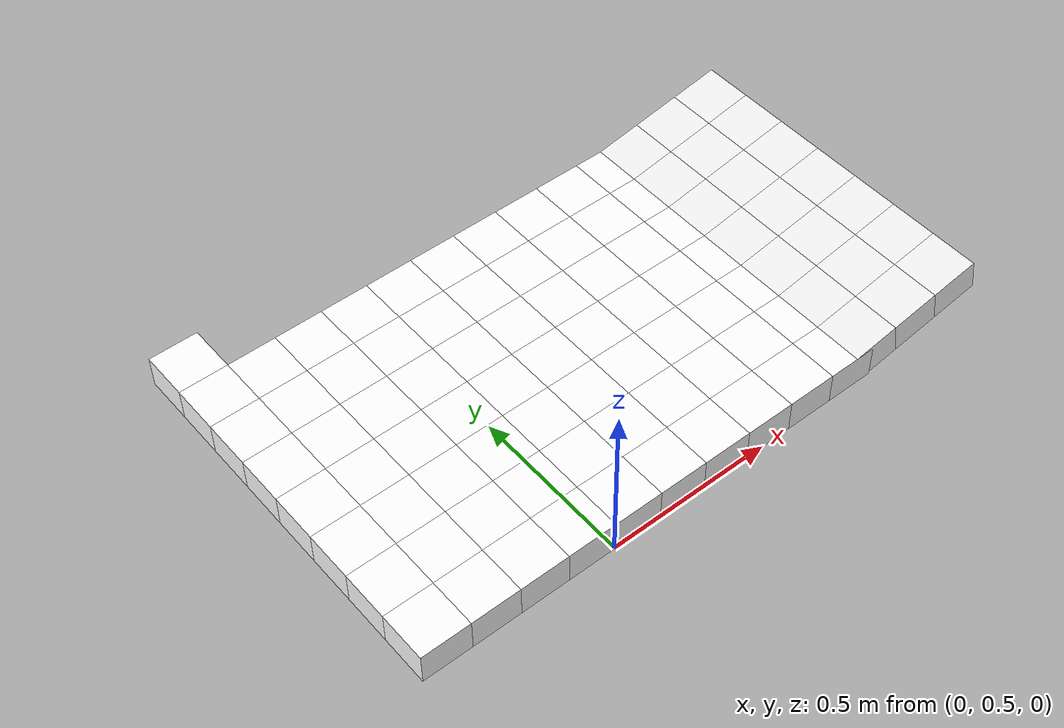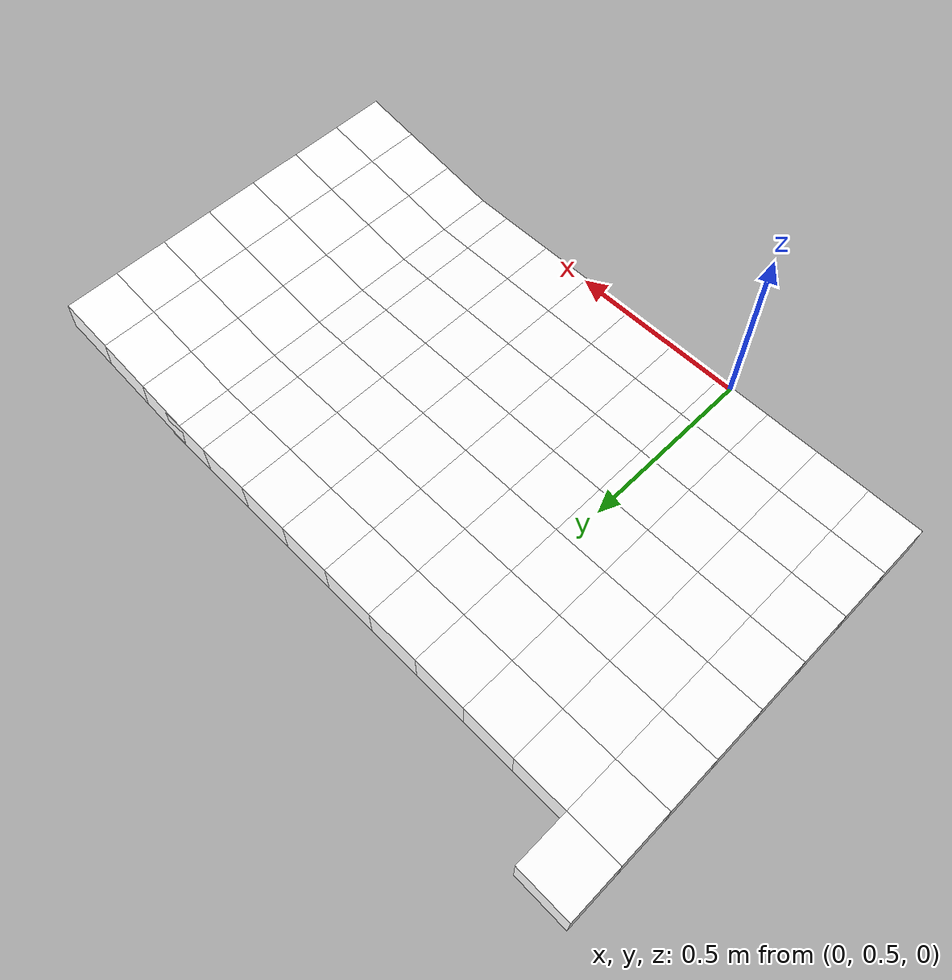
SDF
<sdf version="1.7">
 <world name="default">
  <include><uri>model://sun</uri></include>
  <model name="static_environment">
   <static>true</static>
   <link name="region_10">
    <pose>-0.5000000000000002 0.6 0.0 0.0 0.0 0.0</pose>
    <collision name="region_10_collision">
     <geometry><box><size>0.15 0.15 0.1</size></box></geometry>
     <surface><friction><ode><mu>1.0</mu><mu2>1.0</mu2></ode></friction></surface>
    </collision>
    <visual name="region_10_visual">
     <geometry><box><size>0.15 0.15 0.1</size></box></geometry>
     <material><ambient>1.0 1.0 1.0 1.0</ambient><diffuse>1.0 1.0 1.0 1.0</diffuse></material>
    </visual>
   </link>
   <link name="region_11">
    <pose>-0.3500000000000003 0.6 0.0 0.0 0.0 0.0</pose>
    <collision name="region_11_collision">
     <geometry><box><size>0.15 0.15 0.1</size></box></geometry>
     <surface><friction><ode><mu>1.0</mu><mu2>1.0</mu2></ode></friction></surface>
    </collision>
    <visual name="region_11_visual">
     <geometry><box><size>0.15 0.15 0.1</size></box></geometry>
     <material><ambient>1.0 1.0 1.0 1.0</ambient><diffuse>1.0 1.0 1.0 1.0</diffuse></material>
    </visual>
   </link>
   <link name="region_12">
    <pose>-0.2000000000000004 0.6 0.0 0.0 0.0 0.0</pose>
    <collision name="region_12_collision">
     <geometry><box><size>0.15 0.15 0.1</size></box></geometry>
     <surface><friction><ode><mu>1.0</mu><mu2>1.0</mu2></ode></friction></surface>
    </collision>
    <visual name="region_12_visual">
     <geometry><box><size>0.15 0.15 0.1</size></box></geometry>
     <material><ambient>1.0 1.0 1.0 1.0</ambient><diffuse>1.0 1.0 1.0 1.0</diffuse></material>
    </visual>
   </link>
   <link name="region_13">
    <pose>-0.05000000000000049 0.6 0.0 0.0 0.0 0.0</pose>
    <collision name="region_13_collision">
     <geometry><box><size>0.15 0.15 0.1</size></box></geometry>
     <surface><friction><ode><mu>1.0</mu><mu2>1.0</mu2></ode></friction></surface>
    </collision>
    <visual name="region_13_visual">
     <geometry><box><size>0.15 0.15 0.1</size></box></geometry>
     <material><ambient>1.0 1.0 1.0 1.0</ambient><diffuse>1.0 1.0 1.0 1.0</diffuse></material>
    </visual>
   </link>
   <link name="region_14">
    <pose>0.09999999999999964 0.6 0.0 0.0 0.0 0.0</pose>
    <collision name="region_14_collision">
     <geometry><box><size>0.15 0.15 0.1</size></box></geometry>
     <surface><friction><ode><mu>1.0</mu><mu2>1.0</mu2></ode></friction></surface>
    </collision>
    <visual name="region_14_visual">
     <geometry><box><size>0.15 0.15 0.1</size></box></geometry>
     <material><ambient>1.0 1.0 1.0 1.0</ambient><diffuse>1.0 1.0 1.0 1.0</diffuse></material>
    </visual>
   </link>
   <link name="region_15">
    <pose>0.24999999999999956 0.6 0.0 0.0 0.0 0.0</pose>
    <collision name="region_15_collision">
     <geometry><box><size>0.15 0.15 0.1</size></box></geometry>
     <surface><friction><ode><mu>1.0</mu><mu2>1.0</mu2></ode></friction></surface>
    </collision>
    <visual name="region_15_visual">
     <geometry><box><size>0.15 0.15 0.1</size></box></geometry>
     <material><ambient>1.0 1.0 1.0 1.0</ambient><diffuse>1.0 1.0 1.0 1.0</diffuse></material>
    </visual>
   </link>
   <link name="region_16">
    <pose>0.39999999999999947 0.6 0.0 0.0 0.0 0.0</pose>
    <collision name="region_16_collision">
     <geometry><box><size>0.15 0.15 0.1</size></box></geometry>
     <surface><friction><ode><mu>1.0</mu><mu2>1.0</mu2></ode></friction></surface>
    </collision>
    <visual name="region_16_visual">
     <geometry><box><size>0.15 0.15 0.1</size></box></geometry>
     <material><ambient>1.0 1.0 1.0 1.0</ambient><diffuse>1.0 1.0 1.0 1.0</diffuse></material>
    </visual>
   </link>
   <link name="region_17">
    <pose>0.5499999999999994 0.6 0.0 0.0 0.0 0.0</pose>
    <collision name="region_17_collision">
     <geometry><box><size>0.15 0.15 0.1</size></box></geometry>
     <surface><friction><ode><mu>1.0</mu><mu2>1.0</mu2></ode></friction></surface>
    </collision>
    <visual name="region_17_visual">
     <geometry><box><size>0.15 0.15 0.1</size></box></geometry>
     <material><ambient>1.0 1.0 1.0 1.0</ambient><diffuse>1.0 1.0 1.0 1.0</diffuse></material>
    </visual>
   </link>
   <link name="region_18">
    <pose>0.6999999999999993 0.6 0.0 0.0 0.0 0.0</pose>
    <collision name="region_18_collision">
     <geometry><box><size>0.15 0.15 0.1</size></box></geometry>
     <surface><friction><ode><mu>1.0</mu><mu2>1.0</mu2></ode></friction></surface>
    </collision>
    <visual name="region_18_visual">
     <geometry><box><size>0.15 0.15 0.1</size></box></geometry>
     <material><ambient>1.0 1.0 1.0 1.0</ambient><diffuse>1.0 1.0 1.0 1.0</diffuse></material>
    </visual>
   </link>
   <link name="region_19">
    <pose>0.8499999999999992 0.6 0.0 0.0 0.0 0.0</pose>
    <collision name="region_19_collision">
     <geometry><box><size>0.15 0.15 0.1</size></box></geometry>
     <surface><friction><ode><mu>1.0</mu><mu2>1.0</mu2></ode></friction></surface>
    </collision>
    <visual name="region_19_visual">
     <geometry><box><size>0.15 0.15 0.1</size></box></geometry>
     <material><ambient>1.0 1.0 1.0 1.0</ambient><diffuse>1.0 1.0 1.0 1.0</diffuse></material>
    </visual>
   </link>
   <link name="region_30">
    <pose>-0.5000000000000002 0.75 0.0 0.0 0.0 0.0</pose>
    <collision name="region_30_collision">
     <geometry><box><size>0.15 0.15 0.1</size></box></geometry>
     <surface><friction><ode><mu>1.0</mu><mu2>1.0</mu2></ode></friction></surface>
    </collision>
    <visual name="region_30_visual">
     <geometry><box><size>0.15 0.15 0.1</size></box></geometry>
     <material><ambient>1.0 1.0 1.0 1.0</ambient><diffuse>1.0 1.0 1.0 1.0</diffuse></material>
    </visual>
   </link>
   <link name="region_31">
    <pose>-0.3500000000000003 0.75 0.0 0.0 0.0 0.0</pose>
    <collision name="region_31_collision">
     <geometry><box><size>0.15 0.15 0.1</size></box></geometry>
     <surface><friction><ode><mu>1.0</mu><mu2>1.0</mu2></ode></friction></surface>
    </collision>
    <visual name="region_31_visual">
     <geometry><box><size>0.15 0.15 0.1</size></box></geometry>
     <material><ambient>1.0 1.0 1.0 1.0</ambient><diffuse>1.0 1.0 1.0 1.0</diffuse></material>
    </visual>
   </link>
   <link name="region_32">
    <pose>-0.2000000000000004 0.75 0.0 0.0 0.0 0.0</pose>
    <collision name="region_32_collision">
     <geometry><box><size>0.15 0.15 0.1</size></box></geometry>
     <surface><friction><ode><mu>1.0</mu><mu2>1.0</mu2></ode></friction></surface>
    </collision>
    <visual name="region_32_visual">
     <geometry><box><size>0.15 0.15 0.1</size></box></geometry>
     <material><ambient>1.0 1.0 1.0 1.0</ambient><diffuse>1.0 1.0 1.0 1.0</diffuse></material>
    </visual>
   </link>
   <link name="region_33">
    <pose>-0.05000000000000049 0.75 0.0 0.0 0.0 0.0</pose>
    <collision name="region_33_collision">
     <geometry><box><size>0.15 0.15 0.1</size></box></geometry>
     <surface><friction><ode><mu>1.0</mu><mu2>1.0</mu2></ode></friction></surface>
    </collision>
    <visual name="region_33_visual">
     <geometry><box><size>0.15 0.15 0.1</size></box></geometry>
     <material><ambient>1.0 1.0 1.0 1.0</ambient><diffuse>1.0 1.0 1.0 1.0</diffuse></material>
    </visual>
   </link>
   <link name="region_34">
    <pose>0.09999999999999964 0.75 0.0 0.0 0.0 0.0</pose>
    <collision name="region_34_collision">
     <geometry><box><size>0.15 0.15 0.1</size></box></geometry>
     <surface><friction><ode><mu>1.0</mu><mu2>1.0</mu2></ode></friction></surface>
    </collision>
    <visual name="region_34_visual">
     <geometry><box><size>0.15 0.15 0.1</size></box></geometry>
     <material><ambient>1.0 1.0 1.0 1.0</ambient><diffuse>1.0 1.0 1.0 1.0</diffuse></material>
    </visual>
   </link>
   <link name="region_35">
    <pose>0.24999999999999956 0.75 0.0 0.0 0.0 0.0</pose>
    <collision name="region_35_collision">
     <geometry><box><size>0.15 0.15 0.1</size></box></geometry>
     <surface><friction><ode><mu>1.0</mu><mu2>1.0</mu2></ode></friction></surface>
    </collision>
    <visual name="region_35_visual">
     <geometry><box><size>0.15 0.15 0.1</size></box></geometry>
     <material><ambient>1.0 1.0 1.0 1.0</ambient><diffuse>1.0 1.0 1.0 1.0</diffuse></material>
    </visual>
   </link>
   <link name="region_36">
    <pose>0.39999999999999947 0.75 0.0 0.0 0.0 0.0</pose>
    <collision name="region_36_collision">
     <geometry><box><size>0.15 0.15 0.1</size></box></geometry>
     <surface><friction><ode><mu>1.0</mu><mu2>1.0</mu2></ode></friction></surface>
    </collision>
    <visual name="region_36_visual">
     <geometry><box><size>0.15 0.15 0.1</size></box></geometry>
     <material><ambient>1.0 1.0 1.0 1.0</ambient><diffuse>1.0 1.0 1.0 1.0</diffuse></material>
    </visual>
   </link>
   <link name="region_37">
    <pose>0.5499999999999994 0.75 0.0 0.0 0.0 0.0</pose>
    <collision name="region_37_collision">
     <geometry><box><size>0.15 0.15 0.1</size></box></geometry>
     <surface><friction><ode><mu>1.0</mu><mu2>1.0</mu2></ode></friction></surface>
    </collision>
    <visual name="region_37_visual">
     <geometry><box><size>0.15 0.15 0.1</size></box></geometry>
     <material><ambient>1.0 1.0 1.0 1.0</ambient><diffuse>1.0 1.0 1.0 1.0</diffuse></material>
    </visual>
   </link>
   <link name="region_38">
    <pose>0.6999999999999993 0.75 0.0 0.0 0.0 0.0</pose>
    <collision name="region_38_collision">
     <geometry><box><size>0.15 0.15 0.1</size></box></geometry>
     <surface><friction><ode><mu>1.0</mu><mu2>1.0</mu2></ode></friction></surface>
    </collision>
    <visual name="region_38_visual">
     <geometry><box><size>0.15 0.15 0.1</size></box></geometry>
     <material><ambient>1.0 1.0 1.0 1.0</ambient><diffuse>1.0 1.0 1.0 1.0</diffuse></material>
    </visual>
   </link>
   <link name="region_39">
    <pose>0.8499999999999992 0.75 0.0 0.0 0.0 0.0</pose>
    <collision name="region_39_collision">
     <geometry><box><size>0.15 0.15 0.1</size></box></geometry>
     <surface><friction><ode><mu>1.0</mu><mu2>1.0</mu2></ode></friction></surface>
    </collision>
    <visual name="region_39_visual">
     <geometry><box><size>0.15 0.15 0.1</size></box></geometry>
     <material><ambient>1.0 1.0 1.0 1.0</ambient><diffuse>1.0 1.0 1.0 1.0</diffuse></material>
    </visual>
   </link>
   <link name="region_50">
    <pose>-0.5000000000000002 0.8999999999999999 0.0 0.0 0.0 0.0</pose>
    <collision name="region_50_collision">
     <geometry><box><size>0.15 0.15 0.1</size></box></geometry>
     <surface><friction><ode><mu>1.0</mu><mu2>1.0</mu2></ode></friction></surface>
    </collision>
    <visual name="region_50_visual">
     <geometry><box><size>0.15 0.15 0.1</size></box></geometry>
     <material><ambient>1.0 1.0 1.0 1.0</ambient><diffuse>1.0 1.0 1.0 1.0</diffuse></material>
    </visual>
   </link>
   <link name="region_51">
    <pose>-0.3500000000000003 0.8999999999999999 0.0 0.0 0.0 0.0</pose>
    <collision name="region_51_collision">
     <geometry><box><size>0.15 0.15 0.1</size></box></geometry>
     <surface><friction><ode><mu>1.0</mu><mu2>1.0</mu2></ode></friction></surface>
    </collision>
    <visual name="region_51_visual">
     <geometry><box><size>0.15 0.15 0.1</size></box></geometry>
     <material><ambient>1.0 1.0 1.0 1.0</ambient><diffuse>1.0 1.0 1.0 1.0</diffuse></material>
    </visual>
   </link>
   <link name="region_52">
    <pose>-0.2000000000000004 0.8999999999999999 0.0 0.0 0.0 0.0</pose>
    <collision name="region_52_collision">
     <geometry><box><size>0.15 0.15 0.1</size></box></geometry>
     <surface><friction><ode><mu>1.0</mu><mu2>1.0</mu2></ode></friction></surface>
    </collision>
    <visual name="region_52_visual">
     <geometry><box><size>0.15 0.15 0.1</size></box></geometry>
     <material><ambient>1.0 1.0 1.0 1.0</ambient><diffuse>1.0 1.0 1.0 1.0</diffuse></material>
    </visual>
   </link>
   <link name="region_53">
    <pose>-0.05000000000000049 0.8999999999999999 0.0 0.0 0.0 0.0</pose>
    <collision name="region_53_collision">
     <geometry><box><size>0.15 0.15 0.1</size></box></geometry>
     <surface><friction><ode><mu>1.0</mu><mu2>1.0</mu2></ode></friction></surface>
    </collision>
    <visual name="region_53_visual">
     <geometry><box><size>0.15 0.15 0.1</size></box></geometry>
     <material><ambient>1.0 1.0 1.0 1.0</ambient><diffuse>1.0 1.0 1.0 1.0</diffuse></material>
    </visual>
   </link>
   <link name="region_54">
    <pose>0.09999999999999964 0.8999999999999999 0.0 0.0 0.0 0.0</pose>
    <collision name="region_54_collision">
     <geometry><box><size>0.15 0.15 0.1</size></box></geometry>
     <surface><friction><ode><mu>1.0</mu><mu2>1.0</mu2></ode></friction></surface>
    </collision>
    <visual name="region_54_visual">
     <geometry><box><size>0.15 0.15 0.1</size></box></geometry>
     <material><ambient>1.0 1.0 1.0 1.0</ambient><diffuse>1.0 1.0 1.0 1.0</diffuse></material>
    </visual>
   </link>
   <link name="region_55">
    <pose>0.24999999999999956 0.8999999999999999 0.0 0.0 0.0 0.0</pose>
    <collision name="region_55_collision">
     <geometry><box><size>0.15 0.15 0.1</size></box></geometry>
     <surface><friction><ode><mu>1.0</mu><mu2>1.0</mu2></ode></friction></surface>
    </collision>
    <visual name="region_55_visual">
     <geometry><box><size>0.15 0.15 0.1</size></box></geometry>
     <material><ambient>1.0 1.0 1.0 1.0</ambient><diffuse>1.0 1.0 1.0 1.0</diffuse></material>
    </visual>
   </link>
   <link name="region_56">
    <pose>0.39999999999999947 0.8999999999999999 0.0 0.0 0.0 0.0</pose>
    <collision name="region_56_collision">
     <geometry><box><size>0.15 0.15 0.1</size></box></geometry>
     <surface><friction><ode><mu>1.0</mu><mu2>1.0</mu2></ode></friction></surface>
    </collision>
    <visual name="region_56_visual">
     <geometry><box><size>0.15 0.15 0.1</size></box></geometry>
     <material><ambient>1.0 1.0 1.0 1.0</ambient><diffuse>1.0 1.0 1.0 1.0</diffuse></material>
    </visual>
   </link>
   <link name="region_57">
    <pose>0.5499999999999994 0.8999999999999999 0.0 0.0 0.0 0.0</pose>
    <collision name="region_57_collision">
     <geometry><box><size>0.15 0.15 0.1</size></box></geometry>
     <surface><friction><ode><mu>1.0</mu><mu2>1.0</mu2></ode></friction></surface>
    </collision>
    <visual name="region_57_visual">
     <geometry><box><size>0.15 0.15 0.1</size></box></geometry>
     <material><ambient>1.0 1.0 1.0 1.0</ambient><diffuse>1.0 1.0 1.0 1.0</diffuse></material>
    </visual>
   </link>
   <link name="region_58">
    <pose>0.6999999999999993 0.8999999999999999 0.0 0.0 0.0 0.0</pose>
    <collision name="region_58_collision">
     <geometry><box><size>0.15 0.15 0.1</size></box></geometry>
     <surface><friction><ode><mu>1.0</mu><mu2>1.0</mu2></ode></friction></surface>
    </collision>
    <visual name="region_58_visual">
     <geometry><box><size>0.15 0.15 0.1</size></box></geometry>
     <material><ambient>1.0 1.0 1.0 1.0</ambient><diffuse>1.0 1.0 1.0 1.0</diffuse></material>
    </visual>
   </link>
   <link name="region_59">
    <pose>0.8499999999999992 0.8999999999999999 0.0 0.0 0.0 0.0</pose>
    <collision name="region_59_collision">
     <geometry><box><size>0.15 0.15 0.1</size></box></geometry>
     <surface><friction><ode><mu>1.0</mu><mu2>1.0</mu2></ode></friction></surface>
    </collision>
    <visual name="region_59_visual">
     <geometry><box><size>0.15 0.15 0.1</size></box></geometry>
     <material><ambient>1.0 1.0 1.0 1.0</ambient><diffuse>1.0 1.0 1.0 1.0</diffuse></material>
    </visual>
   </link>
   <link name="region_70">
    <pose>-0.5000000000000002 1.0499999999999998 0.0 0.0 0.0 0.0</pose>
    <collision name="region_70_collision">
     <geometry><box><size>0.15 0.15 0.1</size></box></geometry>
     <surface><friction><ode><mu>1.0</mu><mu2>1.0</mu2></ode></friction></surface>
    </collision>
    <visual name="region_70_visual">
     <geometry><box><size>0.15 0.15 0.1</size></box></geometry>
     <material><ambient>1.0 1.0 1.0 1.0</ambient><diffuse>1.0 1.0 1.0 1.0</diffuse></material>
    </visual>
   </link>
   <link name="region_71">
    <pose>-0.3500000000000003 1.0499999999999998 0.0 0.0 0.0 0.0</pose>
    <collision name="region_71_collision">
     <geometry><box><size>0.15 0.15 0.1</size></box></geometry>
     <surface><friction><ode><mu>1.0</mu><mu2>1.0</mu2></ode></friction></surface>
    </collision>
    <visual name="region_71_visual">
     <geometry><box><size>0.15 0.15 0.1</size></box></geometry>
     <material><ambient>1.0 1.0 1.0 1.0</ambient><diffuse>1.0 1.0 1.0 1.0</diffuse></material>
    </visual>
   </link>
   <link name="region_72">
    <pose>-0.2000000000000004 1.0499999999999998 0.0 0.0 0.0 0.0</pose>
    <collision name="region_72_collision">
     <geometry><box><size>0.15 0.15 0.1</size></box></geometry>
     <surface><friction><ode><mu>1.0</mu><mu2>1.0</mu2></ode></friction></surface>
    </collision>
    <visual name="region_72_visual">
     <geometry><box><size>0.15 0.15 0.1</size></box></geometry>
     <material><ambient>1.0 1.0 1.0 1.0</ambient><diffuse>1.0 1.0 1.0 1.0</diffuse></material>
    </visual>
   </link>
   <link name="region_73">
    <pose>-0.05000000000000049 1.0499999999999998 0.0 0.0 0.0 0.0</pose>
    <collision name="region_73_collision">
     <geometry><box><size>0.15 0.15 0.1</size></box></geometry>
     <surface><friction><ode><mu>1.0</mu><mu2>1.0</mu2></ode></friction></surface>
    </collision>
    <visual name="region_73_visual">
     <geometry><box><size>0.15 0.15 0.1</size></box></geometry>
     <material><ambient>1.0 1.0 1.0 1.0</ambient><diffuse>1.0 1.0 1.0 1.0</diffuse></material>
    </visual>
   </link>
   <link name="region_74">
    <pose>0.09999999999999964 1.0499999999999998 0.0 0.0 0.0 0.0</pose>
    <collision name="region_74_collision">
     <geometry><box><size>0.15 0.15 0.1</size></box></geometry>
     <surface><friction><ode><mu>1.0</mu><mu2>1.0</mu2></ode></friction></surface>
    </collision>
    <visual name="region_74_visual">
     <geometry><box><size>0.15 0.15 0.1</size></box></geometry>
     <material><ambient>1.0 1.0 1.0 1.0</ambient><diffuse>1.0 1.0 1.0 1.0</diffuse></material>
    </visual>
   </link>
   <link name="region_75">
    <pose>0.24999999999999956 1.0499999999999998 0.0 0.0 0.0 0.0</pose>
    <collision name="region_75_collision">
     <geometry><box><size>0.15 0.15 0.1</size></box></geometry>
     <surface><friction><ode><mu>1.0</mu><mu2>1.0</mu2></ode></friction></surface>
    </collision>
    <visual name="region_75_visual">
     <geometry><box><size>0.15 0.15 0.1</size></box></geometry>
     <material><ambient>1.0 1.0 1.0 1.0</ambient><diffuse>1.0 1.0 1.0 1.0</diffuse></material>
    </visual>
   </link>
   <link name="region_76">
    <pose>0.39999999999999947 1.0499999999999998 0.0 0.0 0.0 0.0</pose>
    <collision name="region_76_collision">
     <geometry><box><size>0.15 0.15 0.1</size></box></geometry>
     <surface><friction><ode><mu>1.0</mu><mu2>1.0</mu2></ode></friction></surface>
    </collision>
    <visual name="region_76_visual">
     <geometry><box><size>0.15 0.15 0.1</size></box></geometry>
     <material><ambient>1.0 1.0 1.0 1.0</ambient><diffuse>1.0 1.0 1.0 1.0</diffuse></material>
    </visual>
   </link>
   <link name="region_77">
    <pose>0.5499999999999994 1.0499999999999998 0.0 0.0 0.0 0.0</pose>
    <collision name="region_77_collision">
     <geometry><box><size>0.15 0.15 0.1</size></box></geometry>
     <surface><friction><ode><mu>1.0</mu><mu2>1.0</mu2></ode></friction></surface>
    </collision>
    <visual name="region_77_visual">
     <geometry><box><size>0.15 0.15 0.1</size></box></geometry>
     <material><ambient>1.0 1.0 1.0 1.0</ambient><diffuse>1.0 1.0 1.0 1.0</diffuse></material>
    </visual>
   </link>
   <link name="region_78">
    <pose>0.6999999999999993 1.0499999999999998 0.0 0.0 0.0 0.0</pose>
    <collision name="region_78_collision">
     <geometry><box><size>0.15 0.15 0.1</size></box></geometry>
     <surface><friction><ode><mu>1.0</mu><mu2>1.0</mu2></ode></friction></surface>
    </collision>
    <visual name="region_78_visual">
     <geometry><box><size>0.15 0.15 0.1</size></box></geometry>
     <material><ambient>1.0 1.0 1.0 1.0</ambient><diffuse>1.0 1.0 1.0 1.0</diffuse></material>
    </visual>
   </link>
   <link name="region_79">
    <pose>0.8499999999999992 1.0499999999999998 0.0 0.0 0.0 0.0</pose>
    <collision name="region_79_collision">
     <geometry><box><size>0.15 0.15 0.1</size></box></geometry>
     <surface><friction><ode><mu>1.0</mu><mu2>1.0</mu2></ode></friction></surface>
    </collision>
    <visual name="region_79_visual">
     <geometry><box><size>0.15 0.15 0.1</size></box></geometry>
     <material><ambient>1.0 1.0 1.0 1.0</ambient><diffuse>1.0 1.0 1.0 1.0</diffuse></material>
    </visual>
   </link>
   <link name="region_90">
    <pose>-0.5000000000000002 1.2 0.0 0.0 0.0 0.0</pose>
    <collision name="region_90_collision">
     <geometry><box><size>0.15 0.15 0.1</size></box></geometry>
     <surface><friction><ode><mu>1.0</mu><mu2>1.0</mu2></ode></friction></surface>
    </collision>
    <visual name="region_90_visual">
     <geometry><box><size>0.15 0.15 0.1</size></box></geometry>
     <material><ambient>1.0 1.0 1.0 1.0</ambient><diffuse>1.0 1.0 1.0 1.0</diffuse></material>
    </visual>
   </link>
   <link name="region_91">
    <pose>-0.3500000000000003 1.2 0.0 0.0 0.0 0.0</pose>
    <collision name="region_91_collision">
     <geometry><box><size>0.15 0.15 0.1</size></box></geometry>
     <surface><friction><ode><mu>1.0</mu><mu2>1.0</mu2></ode></friction></surface>
    </collision>
    <visual name="region_91_visual">
     <geometry><box><size>0.15 0.15 0.1</size></box></geometry>
     <material><ambient>1.0 1.0 1.0 1.0</ambient><diffuse>1.0 1.0 1.0 1.0</diffuse></material>
    </visual>
   </link>
   <link name="region_92">
    <pose>-0.2000000000000004 1.2 0.0 0.0 0.0 0.0</pose>
    <collision name="region_92_collision">
     <geometry><box><size>0.15 0.15 0.1</size></box></geometry>
     <surface><friction><ode><mu>1.0</mu><mu2>1.0</mu2></ode></friction></surface>
    </collision>
    <visual name="region_92_visual">
     <geometry><box><size>0.15 0.15 0.1</size></box></geometry>
     <material><ambient>1.0 1.0 1.0 1.0</ambient><diffuse>1.0 1.0 1.0 1.0</diffuse></material>
    </visual>
   </link>
   <link name="region_93">
    <pose>-0.05000000000000049 1.2 0.0 0.0 0.0 0.0</pose>
    <collision name="region_93_collision">
     <geometry><box><size>0.15 0.15 0.1</size></box></geometry>
     <surface><friction><ode><mu>1.0</mu><mu2>1.0</mu2></ode></friction></surface>
    </collision>
    <visual name="region_93_visual">
     <geometry><box><size>0.15 0.15 0.1</size></box></geometry>
     <material><ambient>1.0 1.0 1.0 1.0</ambient><diffuse>1.0 1.0 1.0 1.0</diffuse></material>
    </visual>
   </link>
   <link name="region_94">
    <pose>0.09999999999999964 1.2 0.0 0.0 0.0 0.0</pose>
    <collision name="region_94_collision">
     <geometry><box><size>0.15 0.15 0.1</size></box></geometry>
     <surface><friction><ode><mu>1.0</mu><mu2>1.0</mu2></ode></friction></surface>
    </collision>
    <visual name="region_94_visual">
     <geometry><box><size>0.15 0.15 0.1</size></box></geometry>
     <material><ambient>1.0 1.0 1.0 1.0</ambient><diffuse>1.0 1.0 1.0 1.0</diffuse></material>
    </visual>
   </link>
   <link name="region_95">
    <pose>0.24999999999999956 1.2 0.0 0.0 0.0 0.0</pose>
    <collision name="region_95_collision">
     <geometry><box><size>0.15 0.15 0.1</size></box></geometry>
     <surface><friction><ode><mu>1.0</mu><mu2>1.0</mu2></ode></friction></surface>
    </collision>
    <visual name="region_95_visual">
     <geometry><box><size>0.15 0.15 0.1</size></box></geometry>
     <material><ambient>1.0 1.0 1.0 1.0</ambient><diffuse>1.0 1.0 1.0 1.0</diffuse></material>
    </visual>
   </link>
   <link name="region_96">
    <pose>0.39999999999999947 1.2 0.0 0.0 0.0 0.0</pose>
    <collision name="region_96_collision">
     <geometry><box><size>0.15 0.15 0.1</size></box></geometry>
     <surface><friction><ode><mu>1.0</mu><mu2>1.0</mu2></ode></friction></surface>
    </collision>
    <visual name="region_96_visual">
     <geometry><box><size>0.15 0.15 0.1</size></box></geometry>
     <material><ambient>1.0 1.0 1.0 1.0</ambient><diffuse>1.0 1.0 1.0 1.0</diffuse></material>
    </visual>
   </link>
   <link name="region_97">
    <pose>0.5499999999999994 1.2 0.0 0.0 0.0 0.0</pose>
    <collision name="region_97_collision">
     <geometry><box><size>0.15 0.15 0.1</size></box></geometry>
     <surface><friction><ode><mu>1.0</mu><mu2>1.0</mu2></ode></friction></surface>
    </collision>
    <visual name="region_97_visual">
     <geometry><box><size>0.15 0.15 0.1</size></box></geometry>
     <material><ambient>1.0 1.0 1.0 1.0</ambient><diffuse>1.0 1.0 1.0 1.0</diffuse></material>
    </visual>
   </link>
   <link name="region_98">
    <pose>0.6999999999999993 1.2 0.0 0.0 0.0 0.0</pose>
    <collision name="region_98_collision">
     <geometry><box><size>0.15 0.15 0.1</size></box></geometry>
     <surface><friction><ode><mu>1.0</mu><mu2>1.0</mu2></ode></friction></surface>
    </collision>
    <visual name="region_98_visual">
     <geometry><box><size>0.15 0.15 0.1</size></box></geometry>
     <material><ambient>1.0 1.0 1.0 1.0</ambient><diffuse>1.0 1.0 1.0 1.0</diffuse></material>
    </visual>
   </link>
   <link name="region_99">
    <pose>0.8499999999999992 1.2 0.0 0.0 0.0 0.0</pose>
    <collision name="region_99_collision">
     <geometry><box><size>0.15 0.15 0.1</size></box></geometry>
     <surface><friction><ode><mu>1.0</mu><mu2>1.0</mu2></ode></friction></surface>
    </collision>
    <visual name="region_99_visual">
     <geometry><box><size>0.15 0.15 0.1</size></box></geometry>
     <material><ambient>1.0 1.0 1.0 1.0</ambient><diffuse>1.0 1.0 1.0 1.0</diffuse></material>
    </visual>
   </link>
   <link name="region_110">
    <pose>-0.5000000000000002 1.35 0.0 0.0 0.0 0.0</pose>
    <collision name="region_110_collision">
     <geometry><box><size>0.15 0.15 0.1</size></box></geometry>
     <surface><friction><ode><mu>1.0</mu><mu2>1.0</mu2></ode></friction></surface>
    </collision>
    <visual name="region_110_visual">
     <geometry><box><size>0.15 0.15 0.1</size></box></geometry>
     <material><ambient>1.0 1.0 1.0 1.0</ambient><diffuse>1.0 1.0 1.0 1.0</diffuse></material>
    </visual>
   </link>
   <link name="region_111">
    <pose>-0.3500000000000003 1.35 0.0 0.0 0.0 0.0</pose>
    <collision name="region_111_collision">
     <geometry><box><size>0.15 0.15 0.1</size></box></geometry>
     <surface><friction><ode><mu>1.0</mu><mu2>1.0</mu2></ode></friction></surface>
    </collision>
    <visual name="region_111_visual">
     <geometry><box><size>0.15 0.15 0.1</size></box></geometry>
     <material><ambient>1.0 1.0 1.0 1.0</ambient><diffuse>1.0 1.0 1.0 1.0</diffuse></material>
    </visual>
   </link>
   <link name="region_112">
    <pose>-0.2000000000000004 1.35 0.0 0.0 0.0 0.0</pose>
    <collision name="region_112_collision">
     <geometry><box><size>0.15 0.15 0.1</size></box></geometry>
     <surface><friction><ode><mu>1.0</mu><mu2>1.0</mu2></ode></friction></surface>
    </collision>
    <visual name="region_112_visual">
     <geometry><box><size>0.15 0.15 0.1</size></box></geometry>
     <material><ambient>1.0 1.0 1.0 1.0</ambient><diffuse>1.0 1.0 1.0 1.0</diffuse></material>
    </visual>
   </link>
   <link name="region_113">
    <pose>-0.05000000000000049 1.35 0.0 0.0 0.0 0.0</pose>
    <collision name="region_113_collision">
     <geometry><box><size>0.15 0.15 0.1</size></box></geometry>
     <surface><friction><ode><mu>1.0</mu><mu2>1.0</mu2></ode></friction></surface>
    </collision>
    <visual name="region_113_visual">
     <geometry><box><size>0.15 0.15 0.1</size></box></geometry>
     <material><ambient>1.0 1.0 1.0 1.0</ambient><diffuse>1.0 1.0 1.0 1.0</diffuse></material>
    </visual>
   </link>
   <link name="region_114">
    <pose>0.09999999999999964 1.35 0.0 0.0 0.0 0.0</pose>
    <collision name="region_114_collision">
     <geometry><box><size>0.15 0.15 0.1</size></box></geometry>
     <surface><friction><ode><mu>1.0</mu><mu2>1.0</mu2></ode></friction></surface>
    </collision>
    <visual name="region_114_visual">
     <geometry><box><size>0.15 0.15 0.1</size></box></geometry>
     <material><ambient>1.0 1.0 1.0 1.0</ambient><diffuse>1.0 1.0 1.0 1.0</diffuse></material>
    </visual>
   </link>
   <link name="region_115">
    <pose>0.24999999999999956 1.35 0.0 0.0 0.0 0.0</pose>
    <collision name="region_115_collision">
     <geometry><box><size>0.15 0.15 0.1</size></box></geometry>
     <surface><friction><ode><mu>1.0</mu><mu2>1.0</mu2></ode></friction></surface>
    </collision>
    <visual name="region_115_visual">
     <geometry><box><size>0.15 0.15 0.1</size></box></geometry>
     <material><ambient>1.0 1.0 1.0 1.0</ambient><diffuse>1.0 1.0 1.0 1.0</diffuse></material>
    </visual>
   </link>
   <link name="region_116">
    <pose>0.39999999999999947 1.35 0.0 0.0 0.0 0.0</pose>
    <collision name="region_116_collision">
     <geometry><box><size>0.15 0.15 0.1</size></box></geometry>
     <surface><friction><ode><mu>1.0</mu><mu2>1.0</mu2></ode></friction></surface>
    </collision>
    <visual name="region_116_visual">
     <geometry><box><size>0.15 0.15 0.1</size></box></geometry>
     <material><ambient>1.0 1.0 1.0 1.0</ambient><diffuse>1.0 1.0 1.0 1.0</diffuse></material>
    </visual>
   </link>
   <link name="region_117">
    <pose>0.5499999999999994 1.35 0.0 0.0 0.0 0.0</pose>
    <collision name="region_117_collision">
     <geometry><box><size>0.15 0.15 0.1</size></box></geometry>
     <surface><friction><ode><mu>1.0</mu><mu2>1.0</mu2></ode></friction></surface>
    </collision>
    <visual name="region_117_visual">
     <geometry><box><size>0.15 0.15 0.1</size></box></geometry>
     <material><ambient>1.0 1.0 1.0 1.0</ambient><diffuse>1.0 1.0 1.0 1.0</diffuse></material>
    </visual>
   </link>
   <link name="region_118">
    <pose>0.6999999999999993 1.35 0.0 0.0 0.0 0.0</pose>
    <collision name="region_118_collision">
     <geometry><box><size>0.15 0.15 0.1</size></box></geometry>
     <surface><friction><ode><mu>1.0</mu><mu2>1.0</mu2></ode></friction></surface>
    </collision>
    <visual name="region_118_visual">
     <geometry><box><size>0.15 0.15 0.1</size></box></geometry>
     <material><ambient>1.0 1.0 1.0 1.0</ambient><diffuse>1.0 1.0 1.0 1.0</diffuse></material>
    </visual>
   </link>
   <link name="region_119">
    <pose>0.8499999999999992 1.35 0.0 0.0 0.0 0.0</pose>
    <collision name="region_119_collision">
     <geometry><box><size>0.15 0.15 0.1</size></box></geometry>
     <surface><friction><ode><mu>1.0</mu><mu2>1.0</mu2></ode></friction></surface>
    </collision>
    <visual name="region_119_visual">
     <geometry><box><size>0.15 0.15 0.1</size></box></geometry>
     <material><ambient>1.0 1.0 1.0 1.0</ambient><diffuse>1.0 1.0 1.0 1.0</diffuse></material>
    </visual>
   </link>
   <link name="region_130">
    <pose>-0.5000000000000002 1.5 0.0 0.0 0.0 0.0</pose>
    <collision name="region_130_collision">
     <geometry><box><size>0.15 0.15 0.1</size></box></geometry>
     <surface><friction><ode><mu>1.0</mu><mu2>1.0</mu2></ode></friction></surface>
    </collision>
    <visual name="region_130_visual">
     <geometry><box><size>0.15 0.15 0.1</size></box></geometry>
     <material><ambient>1.0 1.0 1.0 1.0</ambient><diffuse>1.0 1.0 1.0 1.0</diffuse></material>
    </visual>
   </link>
   <link name="region_131">
    <pose>-0.3500000000000003 1.5 0.0 0.0 0.0 0.0</pose>
    <collision name="region_131_collision">
     <geometry><box><size>0.15 0.15 0.1</size></box></geometry>
     <surface><friction><ode><mu>1.0</mu><mu2>1.0</mu2></ode></friction></surface>
    </collision>
    <visual name="region_131_visual">
     <geometry><box><size>0.15 0.15 0.1</size></box></geometry>
     <material><ambient>1.0 1.0 1.0 1.0</ambient><diffuse>1.0 1.0 1.0 1.0</diffuse></material>
    </visual>
   </link>
   <link name="region_132">
    <pose>-0.2000000000000004 1.5 0.0 0.0 0.0 0.0</pose>
    <collision name="region_132_collision">
     <geometry><box><size>0.15 0.15 0.1</size></box></geometry>
     <surface><friction><ode><mu>1.0</mu><mu2>1.0</mu2></ode></friction></surface>
    </collision>
    <visual name="region_132_visual">
     <geometry><box><size>0.15 0.15 0.1</size></box></geometry>
     <material><ambient>1.0 1.0 1.0 1.0</ambient><diffuse>1.0 1.0 1.0 1.0</diffuse></material>
    </visual>
   </link>
   <link name="region_133">
    <pose>-0.05000000000000049 1.5 0.0 0.0 0.0 0.0</pose>
    <collision name="region_133_collision">
     <geometry><box><size>0.15 0.15 0.1</size></box></geometry>
     <surface><friction><ode><mu>1.0</mu><mu2>1.0</mu2></ode></friction></surface>
    </collision>
    <visual name="region_133_visual">
     <geometry><box><size>0.15 0.15 0.1</size></box></geometry>
     <material><ambient>1.0 1.0 1.0 1.0</ambient><diffuse>1.0 1.0 1.0 1.0</diffuse></material>
    </visual>
   </link>
   <link name="region_134">
    <pose>0.09999999999999964 1.5 0.0 0.0 0.0 0.0</pose>
    <collision name="region_134_collision">
     <geometry><box><size>0.15 0.15 0.1</size></box></geometry>
     <surface><friction><ode><mu>1.0</mu><mu2>1.0</mu2></ode></friction></surface>
    </collision>
    <visual name="region_134_visual">
     <geometry><box><size>0.15 0.15 0.1</size></box></geometry>
     <material><ambient>1.0 1.0 1.0 1.0</ambient><diffuse>1.0 1.0 1.0 1.0</diffuse></material>
    </visual>
   </link>
   <link name="region_135">
    <pose>0.24999999999999956 1.5 0.0 0.0 0.0 0.0</pose>
    <collision name="region_135_collision">
     <geometry><box><size>0.15 0.15 0.1</size></box></geometry>
     <surface><friction><ode><mu>1.0</mu><mu2>1.0</mu2></ode></friction></surface>
    </collision>
    <visual name="region_135_visual">
     <geometry><box><size>0.15 0.15 0.1</size></box></geometry>
     <material><ambient>1.0 1.0 1.0 1.0</ambient><diffuse>1.0 1.0 1.0 1.0</diffuse></material>
    </visual>
   </link>
   <link name="region_136">
    <pose>0.39999999999999947 1.5 0.0 0.0 0.0 0.0</pose>
    <collision name="region_136_collision">
     <geometry><box><size>0.15 0.15 0.1</size></box></geometry>
     <surface><friction><ode><mu>1.0</mu><mu2>1.0</mu2></ode></friction></surface>
    </collision>
    <visual name="region_136_visual">
     <geometry><box><size>0.15 0.15 0.1</size></box></geometry>
     <material><ambient>1.0 1.0 1.0 1.0</ambient><diffuse>1.0 1.0 1.0 1.0</diffuse></material>
    </visual>
   </link>
   <link name="region_137">
    <pose>0.5499999999999994 1.5 0.0 0.0 0.0 0.0</pose>
    <collision name="region_137_collision">
     <geometry><box><size>0.15 0.15 0.1</size></box></geometry>
     <surface><friction><ode><mu>1.0</mu><mu2>1.0</mu2></ode></friction></surface>
    </collision>
    <visual name="region_137_visual">
     <geometry><box><size>0.15 0.15 0.1</size></box></geometry>
     <material><ambient>1.0 1.0 1.0 1.0</ambient><diffuse>1.0 1.0 1.0 1.0</diffuse></material>
    </visual>
   </link>
   <link name="region_138">
    <pose>0.6999999999999993 1.5 0.0 0.0 0.0 0.0</pose>
    <collision name="region_138_collision">
     <geometry><box><size>0.15 0.15 0.1</size></box></geometry>
     <surface><friction><ode><mu>1.0</mu><mu2>1.0</mu2></ode></friction></surface>
    </collision>
    <visual name="region_138_visual">
     <geometry><box><size>0.15 0.15 0.1</size></box></geometry>
     <material><ambient>1.0 1.0 1.0 1.0</ambient><diffuse>1.0 1.0 1.0 1.0</diffuse></material>
    </visual>
   </link>
   <link name="region_139">
    <pose>0.8499999999999992 1.5 0.0 0.0 0.0 0.0</pose>
    <collision name="region_139_collision">
     <geometry><box><size>0.15 0.15 0.1</size></box></geometry>
     <surface><friction><ode><mu>1.0</mu><mu2>1.0</mu2></ode></friction></surface>
    </collision>
    <visual name="region_139_visual">
     <geometry><box><size>0.15 0.15 0.1</size></box></geometry>
     <material><ambient>1.0 1.0 1.0 1.0</ambient><diffuse>1.0 1.0 1.0 1.0</diffuse></material>
    </visual>
   </link>
   <link name="region_150">
    <pose>-0.5000000000000002 1.65 0.0 0.0 0.0 0.0</pose>
    <collision name="region_150_collision">
     <geometry><box><size>0.15 0.15 0.1</size></box></geometry>
     <surface><friction><ode><mu>1.0</mu><mu2>1.0</mu2></ode></friction></surface>
    </collision>
    <visual name="region_150_visual">
     <geometry><box><size>0.15 0.15 0.1</size></box></geometry>
     <material><ambient>1.0 1.0 1.0 1.0</ambient><diffuse>1.0 1.0 1.0 1.0</diffuse></material>
    </visual>
   </link>
   <link name="region_400">
    <pose>0.9427610316211048 0.6 0.01255032956896146 0.0 -0.175 0.0</pose>
    <collision name="region_400_collision">
     <geometry><box><size>0.15 0.15 0.1</size></box></geometry>
     <surface><friction><ode><mu>1.0</mu><mu2>1.0</mu2></ode></friction></surface>
    </collision>
    <visual name="region_400_visual">
     <geometry><box><size>0.15 0.15 0.1</size></box></geometry>
     <material><ambient>1.0 1.0 1.0 1.0</ambient><diffuse>1.0 1.0 1.0 1.0</diffuse></material>
    </visual>
   </link>
   <link name="region_401">
    <pose>1.0904700124568447 0.6 0.03866655020800086 0.0 -0.175 0.0</pose>
    <collision name="region_401_collision">
     <geometry><box><size>0.15 0.15 0.1</size></box></geometry>
     <surface><friction><ode><mu>1.0</mu><mu2>1.0</mu2></ode></friction></surface>
    </collision>
    <visual name="region_401_visual">
     <geometry><box><size>0.15 0.15 0.1</size></box></geometry>
     <material><ambient>1.0 1.0 1.0 1.0</ambient><diffuse>1.0 1.0 1.0 1.0</diffuse></material>
    </visual>
   </link>
   <link name="region_402">
    <pose>1.2381789932925846 0.6 0.06478277084704026 0.0 -0.175 0.0</pose>
    <collision name="region_402_collision">
     <geometry><box><size>0.15 0.15 0.1</size></box></geometry>
     <surface><friction><ode><mu>1.0</mu><mu2>1.0</mu2></ode></friction></surface>
    </collision>
    <visual name="region_402_visual">
     <geometry><box><size>0.15 0.15 0.1</size></box></geometry>
     <material><ambient>1.0 1.0 1.0 1.0</ambient><diffuse>1.0 1.0 1.0 1.0</diffuse></material>
    </visual>
   </link>
   <link name="region_410">
    <pose>0.9427610316211048 0.75 0.01255032956896146 0.0 -0.175 0.0</pose>
    <collision name="region_410_collision">
     <geometry><box><size>0.15 0.15 0.1</size></box></geometry>
     <surface><friction><ode><mu>1.0</mu><mu2>1.0</mu2></ode></friction></surface>
    </collision>
    <visual name="region_410_visual">
     <geometry><box><size>0.15 0.15 0.1</size></box></geometry>
     <material><ambient>1.0 1.0 1.0 1.0</ambient><diffuse>1.0 1.0 1.0 1.0</diffuse></material>
    </visual>
   </link>
   <link name="region_411">
    <pose>1.0904700124568447 0.75 0.03866655020800086 0.0 -0.175 0.0</pose>
    <collision name="region_411_collision">
     <geometry><box><size>0.15 0.15 0.1</size></box></geometry>
     <surface><friction><ode><mu>1.0</mu><mu2>1.0</mu2></ode></friction></surface>
    </collision>
    <visual name="region_411_visual">
     <geometry><box><size>0.15 0.15 0.1</size></box></geometry>
     <material><ambient>1.0 1.0 1.0 1.0</ambient><diffuse>1.0 1.0 1.0 1.0</diffuse></material>
    </visual>
   </link>
   <link name="region_412">
    <pose>1.2381789932925846 0.75 0.06478277084704026 0.0 -0.175 0.0</pose>
    <collision name="region_412_collision">
     <geometry><box><size>0.15 0.15 0.1</size></box></geometry>
     <surface><friction><ode><mu>1.0</mu><mu2>1.0</mu2></ode></friction></surface>
    </collision>
    <visual name="region_412_visual">
     <geometry><box><size>0.15 0.15 0.1</size></box></geometry>
     <material><ambient>1.0 1.0 1.0 1.0</ambient><diffuse>1.0 1.0 1.0 1.0</diffuse></material>
    </visual>
   </link>
   <link name="region_420">
    <pose>0.9427610316211048 0.8999999999999999 0.01255032956896146 0.0 -0.175 0.0</pose>
    <collision name="region_420_collision">
     <geometry><box><size>0.15 0.15 0.1</size></box></geometry>
     <surface><friction><ode><mu>1.0</mu><mu2>1.0</mu2></ode></friction></surface>
    </collision>
    <visual name="region_420_visual">
     <geometry><box><size>0.15 0.15 0.1</size></box></geometry>
     <material><ambient>1.0 1.0 1.0 1.0</ambient><diffuse>1.0 1.0 1.0 1.0</diffuse></material>
    </visual>
   </link>
   <link name="region_421">
    <pose>1.0904700124568447 0.8999999999999999 0.03866655020800086 0.0 -0.175 0.0</pose>
    <collision name="region_421_collision">
     <geometry><box><size>0.15 0.15 0.1</size></box></geometry>
     <surface><friction><ode><mu>1.0</mu><mu2>1.0</mu2></ode></friction></surface>
    </collision>
    <visual name="region_421_visual">
     <geometry><box><size>0.15 0.15 0.1</size></box></geometry>
     <material><ambient>1.0 1.0 1.0 1.0</ambient><diffuse>1.0 1.0 1.0 1.0</diffuse></material>
    </visual>
   </link>
   <link name="region_422">
    <pose>1.2381789932925846 0.8999999999999999 0.06478277084704026 0.0 -0.175 0.0</pose>
    <collision name="region_422_collision">
     <geometry><box><size>0.15 0.15 0.1</size></box></geometry>
     <surface><friction><ode><mu>1.0</mu><mu2>1.0</mu2></ode></friction></surface>
    </collision>
    <visual name="region_422_visual">
     <geometry><box><size>0.15 0.15 0.1</size></box></geometry>
     <material><ambient>1.0 1.0 1.0 1.0</ambient><diffuse>1.0 1.0 1.0 1.0</diffuse></material>
    </visual>
   </link>
   <link name="region_430">
    <pose>0.9427610316211048 1.0499999999999998 0.01255032956896146 0.0 -0.175 0.0</pose>
    <collision name="region_430_collision">
     <geometry><box><size>0.15 0.15 0.1</size></box></geometry>
     <surface><friction><ode><mu>1.0</mu><mu2>1.0</mu2></ode></friction></surface>
    </collision>
    <visual name="region_430_visual">
     <geometry><box><size>0.15 0.15 0.1</size></box></geometry>
     <material><ambient>1.0 1.0 1.0 1.0</ambient><diffuse>1.0 1.0 1.0 1.0</diffuse></material>
    </visual>
   </link>
   <link name="region_431">
    <pose>1.0904700124568447 1.0499999999999998 0.03866655020800086 0.0 -0.175 0.0</pose>
    <collision name="region_431_collision">
     <geometry><box><size>0.15 0.15 0.1</size></box></geometry>
     <surface><friction><ode><mu>1.0</mu><mu2>1.0</mu2></ode></friction></surface>
    </collision>
    <visual name="region_431_visual">
     <geometry><box><size>0.15 0.15 0.1</size></box></geometry>
     <material><ambient>1.0 1.0 1.0 1.0</ambient><diffuse>1.0 1.0 1.0 1.0</diffuse></material>
    </visual>
   </link>
   <link name="region_432">
    <pose>1.2381789932925846 1.0499999999999998 0.06478277084704026 0.0 -0.175 0.0</pose>
    <collision name="region_432_collision">
     <geometry><box><size>0.15 0.15 0.1</size></box></geometry>
     <surface><friction><ode><mu>1.0</mu><mu2>1.0</mu2></ode></friction></surface>
    </collision>
    <visual name="region_432_visual">
     <geometry><box><size>0.15 0.15 0.1</size></box></geometry>
     <material><ambient>1.0 1.0 1.0 1.0</ambient><diffuse>1.0 1.0 1.0 1.0</diffuse></material>
    </visual>
   </link>
   <link name="region_440">
    <pose>0.9427610316211048 1.2 0.01255032956896146 0.0 -0.175 0.0</pose>
    <collision name="region_440_collision">
     <geometry><box><size>0.15 0.15 0.1</size></box></geometry>
     <surface><friction><ode><mu>1.0</mu><mu2>1.0</mu2></ode></friction></surface>
    </collision>
    <visual name="region_440_visual">
     <geometry><box><size>0.15 0.15 0.1</size></box></geometry>
     <material><ambient>1.0 1.0 1.0 1.0</ambient><diffuse>1.0 1.0 1.0 1.0</diffuse></material>
    </visual>
   </link>
   <link name="region_441">
    <pose>1.0904700124568447 1.2 0.03866655020800086 0.0 -0.175 0.0</pose>
    <collision name="region_441_collision">
     <geometry><box><size>0.15 0.15 0.1</size></box></geometry>
     <surface><friction><ode><mu>1.0</mu><mu2>1.0</mu2></ode></friction></surface>
    </collision>
    <visual name="region_441_visual">
     <geometry><box><size>0.15 0.15 0.1</size></box></geometry>
     <material><ambient>1.0 1.0 1.0 1.0</ambient><diffuse>1.0 1.0 1.0 1.0</diffuse></material>
    </visual>
   </link>
   <link name="region_442">
    <pose>1.2381789932925846 1.2 0.06478277084704026 0.0 -0.175 0.0</pose>
    <collision name="region_442_collision">
     <geometry><box><size>0.15 0.15 0.1</size></box></geometry>
     <surface><friction><ode><mu>1.0</mu><mu2>1.0</mu2></ode></friction></surface>
    </collision>
    <visual name="region_442_visual">
     <geometry><box><size>0.15 0.15 0.1</size></box></geometry>
     <material><ambient>1.0 1.0 1.0 1.0</ambient><diffuse>1.0 1.0 1.0 1.0</diffuse></material>
    </visual>
   </link>
   <link name="region_450">
    <pose>0.9427610316211048 1.35 0.01255032956896146 0.0 -0.175 0.0</pose>
    <collision name="region_450_collision">
     <geometry><box><size>0.15 0.15 0.1</size></box></geometry>
     <surface><friction><ode><mu>1.0</mu><mu2>1.0</mu2></ode></friction></surface>
    </collision>
    <visual name="region_450_visual">
     <geometry><box><size>0.15 0.15 0.1</size></box></geometry>
     <material><ambient>1.0 1.0 1.0 1.0</ambient><diffuse>1.0 1.0 1.0 1.0</diffuse></material>
    </visual>
   </link>
   <link name="region_451">
    <pose>1.0904700124568447 1.35 0.03866655020800086 0.0 -0.175 0.0</pose>
    <collision name="region_451_collision">
     <geometry><box><size>0.15 0.15 0.1</size></box></geometry>
     <surface><friction><ode><mu>1.0</mu><mu2>1.0</mu2></ode></friction></surface>
    </collision>
    <visual name="region_451_visual">
     <geometry><box><size>0.15 0.15 0.1</size></box></geometry>
     <material><ambient>1.0 1.0 1.0 1.0</ambient><diffuse>1.0 1.0 1.0 1.0</diffuse></material>
    </visual>
   </link>
   <link name="region_452">
    <pose>1.2381789932925846 1.35 0.06478277084704026 0.0 -0.175 0.0</pose>
    <collision name="region_452_collision">
     <geometry><box><size>0.15 0.15 0.1</size></box></geometry>
     <surface><friction><ode><mu>1.0</mu><mu2>1.0</mu2></ode></friction></surface>
    </collision>
    <visual name="region_452_visual">
     <geometry><box><size>0.15 0.15 0.1</size></box></geometry>
     <material><ambient>1.0 1.0 1.0 1.0</ambient><diffuse>1.0 1.0 1.0 1.0</diffuse></material>
    </visual>
   </link>
   <link name="region_460">
    <pose>0.9427610316211048 1.5 0.01255032956896146 0.0 -0.175 0.0</pose>
    <collision name="region_460_collision">
     <geometry><box><size>0.15 0.15 0.1</size></box></geometry>
     <surface><friction><ode><mu>1.0</mu><mu2>1.0</mu2></ode></friction></surface>
    </collision>
    <visual name="region_460_visual">
     <geometry><box><size>0.15 0.15 0.1</size></box></geometry>
     <material><ambient>1.0 1.0 1.0 1.0</ambient><diffuse>1.0 1.0 1.0 1.0</diffuse></material>
    </visual>
   </link>
   <link name="region_461">
    <pose>1.0904700124568447 1.5 0.03866655020800086 0.0 -0.175 0.0</pose>
    <collision name="region_461_collision">
     <geometry><box><size>0.15 0.15 0.1</size></box></geometry>
     <surface><friction><ode><mu>1.0</mu><mu2>1.0</mu2></ode></friction></surface>
    </collision>
    <visual name="region_461_visual">
     <geometry><box><size>0.15 0.15 0.1</size></box></geometry>
     <material><ambient>1.0 1.0 1.0 1.0</ambient><diffuse>1.0 1.0 1.0 1.0</diffuse></material>
    </visual>
   </link>
   <link name="region_462">
    <pose>1.2381789932925846 1.5 0.06478277084704026 0.0 -0.175 0.0</pose>
    <collision name="region_462_collision">
     <geometry><box><size>0.15 0.15 0.1</size></box></geometry>
     <surface><friction><ode><mu>1.0</mu><mu2>1.0</mu2></ode></friction></surface>
    </collision>
    <visual name="region_462_visual">
     <geometry><box><size>0.15 0.15 0.1</size></box></geometry>
     <material><ambient>1.0 1.0 1.0 1.0</ambient><diffuse>1.0 1.0 1.0 1.0</diffuse></material>
    </visual>
   </link>
  </model>
 </world>
</sdf>
